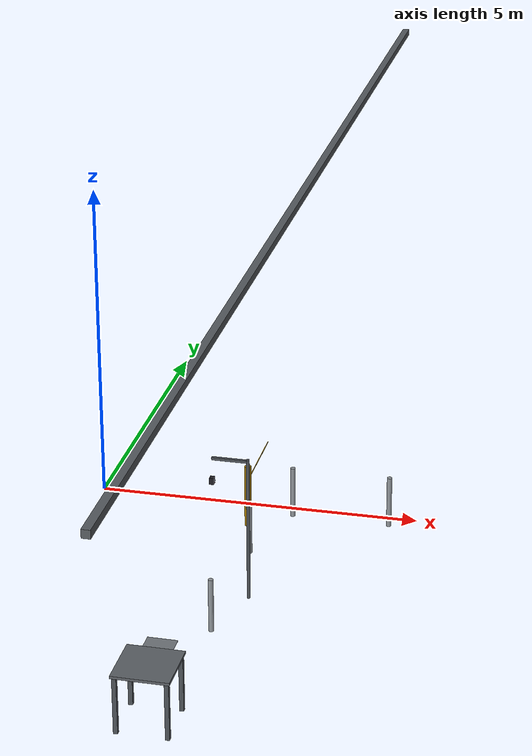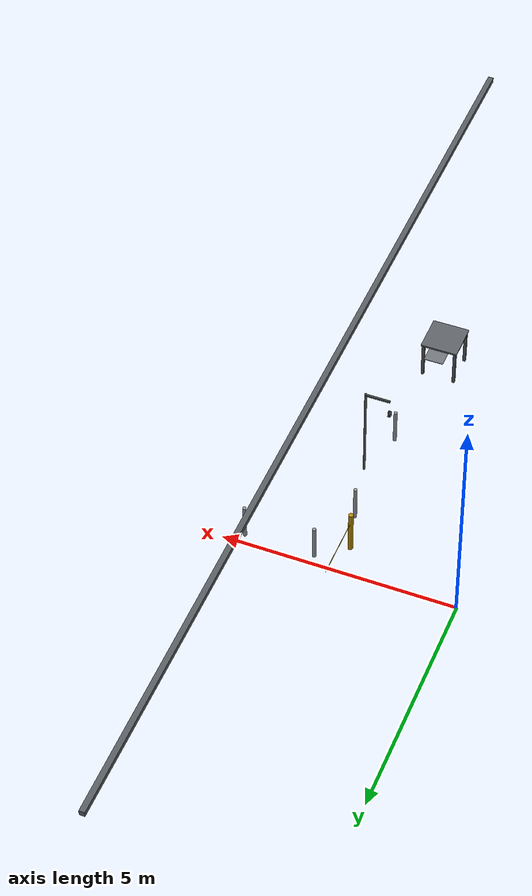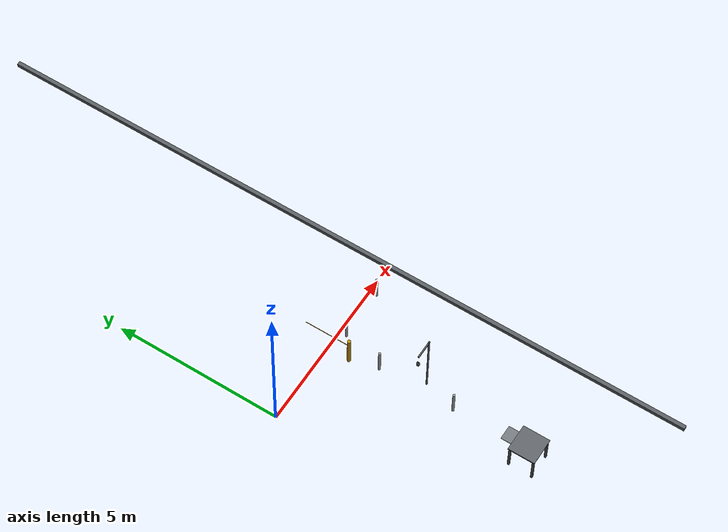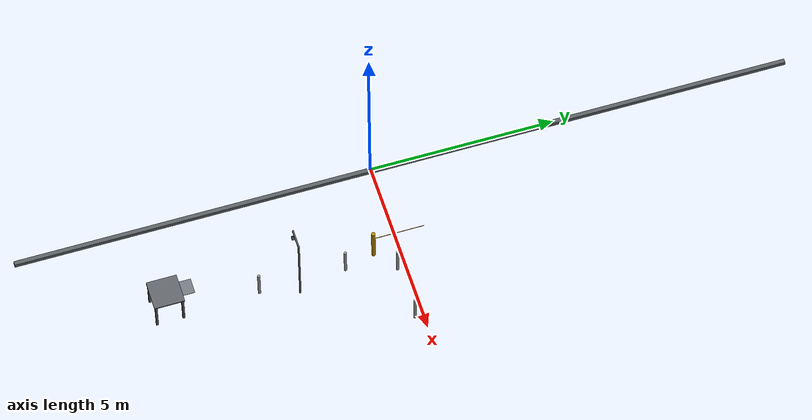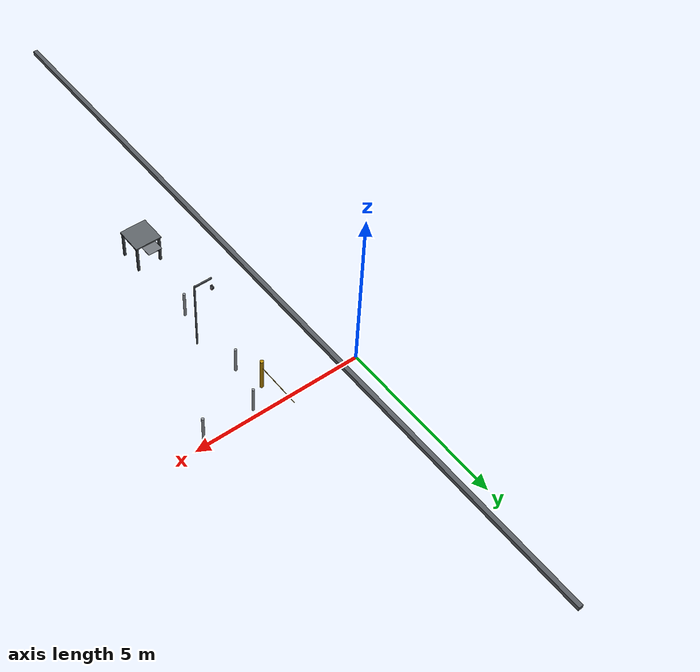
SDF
<sdf version="1.9">
 <world name="weld_inspection_world">
  <model name="truss_C">
   <static>true</static>
   <pose>3 0 4.86 0 0 0</pose>
   <link name="l">
    <visual name="v">
     <geometry><box><size>0.11 20 0.11</size></box></geometry>
     <material>
      <ambient>0.32 0.34 0.36 1</ambient>
      <diffuse>0.34 0.36 0.38 1</diffuse>
      <specular>0.30 0.30 0.30 1</specular>
     </material>
    </visual>
   </link>
  </model>
  <model name="gb_l2">
   <static>true</static>
   <pose>3.1 -0.22 0.40 0 0 0</pose>
   <link name="l">
    <visual name="v">
     <geometry><cylinder><radius>0.038</radius><length>0.82</length></cylinder></geometry>
     <material>
      <ambient>0.52 0.54 0.56 1</ambient>
      <diffuse>0.56 0.58 0.60 1</diffuse>
      <specular>0.35 0.35 0.35 1</specular>
     </material>
    </visual>
    <collision name="c">
     <geometry><cylinder><radius>0.038</radius><length>0.82</length></cylinder></geometry>
    </collision>
   </link>
  </model>
  <model name="gb_l4">
   <static>true</static>
   <pose>4.6 -0.22 0.40 0 0 0</pose>
   <link name="l">
    <visual name="v">
     <geometry><cylinder><radius>0.038</radius><length>0.82</length></cylinder></geometry>
     <material>
      <ambient>0.52 0.54 0.56 1</ambient>
      <diffuse>0.56 0.58 0.60 1</diffuse>
      <specular>0.35 0.35 0.35 1</specular>
     </material>
    </visual>
    <collision name="c">
     <geometry><cylinder><radius>0.038</radius><length>0.82</length></cylinder></geometry>
    </collision>
   </link>
  </model>
  <model name="rb_l1">
   <static>true</static>
   <pose>2.72 -1.5 0.40 0 0 0</pose>
   <link name="l">
    <visual name="v">
     <geometry><cylinder><radius>0.038</radius><length>0.82</length></cylinder></geometry>
     <material>
      <ambient>0.52 0.54 0.56 1</ambient>
      <diffuse>0.56 0.58 0.60 1</diffuse>
      <specular>0.35 0.35 0.35 1</specular>
     </material>
    </visual>
    <collision name="c">
     <geometry><cylinder><radius>0.038</radius><length>0.82</length></cylinder></geometry>
    </collision>
   </link>
  </model>
  <model name="rb_l3">
   <static>true</static>
   <pose>2.72 -3.8 0.40 0 0 0</pose>
   <link name="l">
    <visual name="v">
     <geometry><cylinder><radius>0.038</radius><length>0.82</length></cylinder></geometry>
     <material>
      <ambient>0.52 0.54 0.56 1</ambient>
      <diffuse>0.56 0.58 0.60 1</diffuse>
      <specular>0.35 0.35 0.35 1</specular>
     </material>
    </visual>
    <collision name="c">
     <geometry><cylinder><radius>0.038</radius><length>0.82</length></cylinder></geometry>
    </collision>
   </link>
  </model>
  <model name="cam_mount_reject">
   <static>true</static>
   <pose>2.5 -2.8 0 0 0 0</pose>
   <link name="post">
    <pose>0.52 0 1.1 0 0 0</pose>
    <visual name="v">
     <geometry><cylinder><radius>0.025</radius><length>2.22</length></cylinder></geometry>
     <material>
      <ambient>0.28 0.30 0.32 1</ambient>
      <diffuse>0.30 0.32 0.34 1</diffuse>
      <specular>0.38 0.38 0.38 1</specular>
     </material>
    </visual>
    <collision name="c">
     <geometry><cylinder><radius>0.025</radius><length>2.22</length></cylinder></geometry>
    </collision>
   </link>
   <link name="arm">
    <pose>0.26 0 2.18 0 0 0</pose>
    <visual name="v">
     <geometry><box><size>0.52 0.040 0.040</size></box></geometry>
     <material>
      <ambient>0.28 0.30 0.32 1</ambient>
      <diffuse>0.30 0.32 0.34 1</diffuse>
      <specular>0.38 0.38 0.38 1</specular>
     </material>
    </visual>
    <collision name="c"><geometry><box><size>0.52 0.040 0.040</size></box></geometry></collision>
   </link>
   <link name="camera_link_reject">
    <pose>0 0 1.83 0 1.5708 0</pose>
    <visual name="housing">
     <geometry><box><size>0.10 0.08 0.065</size></box></geometry>
     <material>
      <ambient>0.10 0.10 0.12 1</ambient>
      <diffuse>0.12 0.12 0.14 1</diffuse>
      <specular>0.50 0.50 0.50 1</specular>
     </material>
    </visual>
    <visual name="lens">
     <pose>0 0 0.038 0 0 0</pose>
     <geometry><cylinder><radius>0.014</radius><length>0.010</length></cylinder></geometry>
     <material>
      <ambient>0.02 0.04 0.08 1</ambient>
      <diffuse>0.02 0.04 0.08 1</diffuse>
      <specular>1 1 1 1</specular>
     </material>
    </visual>
    <visual name="led_r">
     <pose>0.045 0.027 0.033 0 0 0</pose>
     <geometry><sphere><radius>0.005</radius></sphere></geometry>
     <material>
      <ambient>0.75 0.05 0.05 1</ambient>
      <diffuse>0.80 0.06 0.06 1</diffuse>
      <emissive>0.36 0.02 0.02 1</emissive>
     </material>
    </visual>
    <sensor name="reject_belt_camera" type="camera">
     <always_on>1</always_on>
     <update_rate>5</update_rate>
     <topic>/reject_belt_camera/image_raw</topic>
     <camera>
      <horizontal_fov>0.85</horizontal_fov>
      <image><width>320</width><height>240</height><format>R8G8B8</format></image>
      <clip><near>0.05</near><far>8.0</far></clip>
     </camera>
    </sensor>
   </link>
  </model>
  <model name="rework_table">
   <static>true</static>
   <pose>2.5 -6.2 0 0 0 0</pose>
   <link name="top">
    <pose>0 0 0.86 0 0 0</pose>
    <visual name="v">
     <geometry><box><size>0.80 0.80 0.04</size></box></geometry>
     <material>
      <ambient>0.32 0.34 0.36 1</ambient>
      <diffuse>0.36 0.38 0.40 1</diffuse>
      <specular>0.35 0.35 0.35 1</specular>
     </material>
    </visual>
    <collision name="c"><geometry><box><size>0.80 0.80 0.04</size></box></geometry></collision>
   </link>
   <link name="leg1">
    <pose>-0.35 -0.35 0.43 0 0 0</pose>
    <visual name="v">
     <geometry><box><size>0.06 0.06 0.86</size></box></geometry>
     <material>
      <ambient>0.28 0.30 0.32 1</ambient>
      <diffuse>0.30 0.32 0.34 1</diffuse>
      <specular>0.22 0.22 0.22 1</specular>
     </material>
    </visual>
    <collision name="c"><geometry><box><size>0.06 0.06 0.86</size></box></geometry></collision>
   </link>
   <link name="leg2">
    <pose>-0.35  0.35 0.43 0 0 0</pose>
    <visual name="v">
     <geometry><box><size>0.06 0.06 0.86</size></box></geometry>
     <material>
      <ambient>0.28 0.30 0.32 1</ambient>
      <diffuse>0.30 0.32 0.34 1</diffuse>
      <specular>0.22 0.22 0.22 1</specular>
     </material>
    </visual>
    <collision name="c"><geometry><box><size>0.06 0.06 0.86</size></box></geometry></collision>
   </link>
   <link name="leg3">
    <pose>0.35 -0.35 0.43 0 0 0</pose>
    <visual name="v">
     <geometry><box><size>0.06 0.06 0.86</size></box></geometry>
     <material>
      <ambient>0.28 0.30 0.32 1</ambient>
      <diffuse>0.30 0.32 0.34 1</diffuse>
      <specular>0.22 0.22 0.22 1</specular>
     </material>
    </visual>
    <collision name="c"><geometry><box><size>0.06 0.06 0.86</size></box></geometry></collision>
   </link>
   <link name="leg4">
    <pose>0.35  0.35 0.43 0 0 0</pose>
    <visual name="v">
     <geometry><box><size>0.06 0.06 0.86</size></box></geometry>
     <material>
      <ambient>0.28 0.30 0.32 1</ambient>
      <diffuse>0.30 0.32 0.34 1</diffuse>
      <specular>0.22 0.22 0.22 1</specular>
     </material>
    </visual>
    <collision name="c"><geometry><box><size>0.06 0.06 0.86</size></box></geometry></collision>
   </link>
  </model>
  <model name="rework_to_return_plate">
   <static>true</static>
   <pose>2.5 -5.72 0.820 0 0 0</pose>
   <link name="l">
    <visual name="v">
     <geometry><box><size>0.42 0.48 0.012</size></box></geometry>
     <material>
      <ambient>0.40 0.42 0.44 1</ambient>
      <diffuse>0.44 0.46 0.48 1</diffuse>
      <specular>0.32 0.32 0.32 1</specular>
     </material>
    </visual>
    <collision name="c">
     <geometry><box><size>0.42 0.48 0.012</size></box></geometry>
     <surface><friction><ode><mu>0.7</mu><mu2>0.7</mu2></ode></friction></surface>
    </collision>
   </link>
  </model>
  <model name="boll_2">
   <static>true</static>
   <pose>2.5 -0.68 0 0 0 0</pose>
   <link name="l">
    <pose>0 0 0.50 0 0 0</pose>
    <visual name="v">
     <geometry><cylinder><radius>0.052</radius><length>1.0</length></cylinder></geometry>
     <material>
      <ambient>0.64 0.48 0.02 1</ambient>
      <diffuse>0.70 0.52 0.02 1</diffuse>
      <specular>0.14 0.11 0.01 1</specular>
     </material>
    </visual>
    <collision name="c">
     <geometry><cylinder><radius>0.052</radius><length>1.0</length></cylinder></geometry>
    </collision>
   </link>
  </model>
  <model name="chain">
   <static>true</static>
   <pose>2.5 0 0.76 0 0 0</pose>
   <link name="l">
    <visual name="v">
     <geometry><box><size>0.010 1.36 0.010</size></box></geometry>
     <material><ambient>0.60 0.45 0.02 1</ambient><diffuse>0.66 0.50 0.02 1</diffuse></material>
    </visual>
   </link>
  </model>
 </world>
</sdf>
